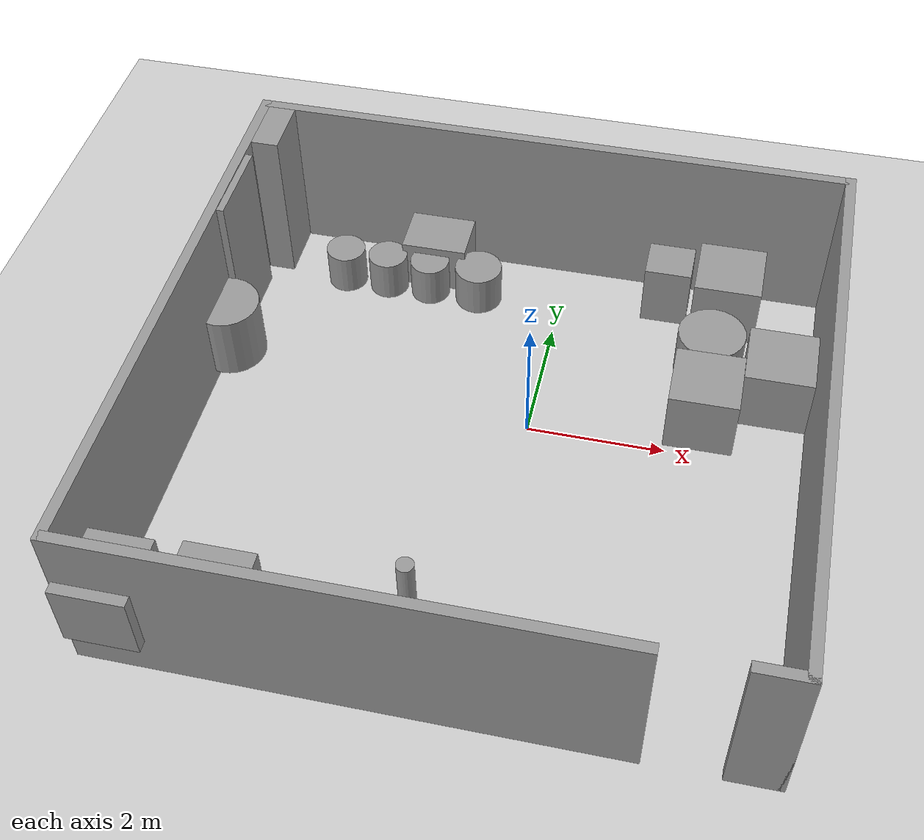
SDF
<sdf version="1.6">
 <world name="default">
  <light name="sun" type="directional">
   <pose>0 0 10 0 -0 0</pose>
   <diffuse>0.8 0.8 0.8 1</diffuse>
   <specular>0.2 0.2 0.2 1</specular>
   <attenuation>
    <range>1000</range>
    <constant>0.9</constant>
    <linear>0.01</linear>
    <quadratic>0.001</quadratic>
   </attenuation>
   <direction>-0.5 0.1 -0.9</direction>
  </light>
  <model name="ground_plane">
   <static>1</static>
   <link name="link">
    <collision name="collision">
     <geometry><plane><normal>0 0 1</normal><size>100 100</size></plane></geometry>
     <surface>
      <contact><collide_bitmask>65535</collide_bitmask></contact>
      <friction><ode><mu>100</mu><mu2>50</mu2></ode></friction>
     </surface>
    </collision>
    <visual name="visual">
     <cast_shadows>0</cast_shadows>
     <geometry><plane><normal>0 0 1</normal><size>100 100</size></plane></geometry>
     <material>
      <script><uri>file://media/materials/scripts/gazebo.material</uri><name>Gazebo/Grey</name></script>
     </material>
    </visual>
   </link>
  </model>
  <gravity>0 0 -9.8</gravity>
  <magnetic_field>6e-06 2.3e-05 -4.2e-05</magnetic_field>
  <atmosphere type="adiabatic"/>
  <physics name="default_physics" default="0" type="ode">
   <max_step_size>0.001</max_step_size>
   <real_time_factor>1</real_time_factor>
   <real_time_update_rate>1000</real_time_update_rate>
  </physics>
  <scene><ambient>0.4 0.4 0.4 1</ambient><background>0.7 0.7 0.7 1</background><shadows>1</shadows></scene>
  <audio><device>default</device></audio>
  <spherical_coordinates>
   <surface_model>EARTH_WGS84</surface_model>
   <latitude_deg>0</latitude_deg>
   <longitude_deg>0</longitude_deg>
   <elevation>0</elevation>
   <heading_deg>0</heading_deg>
  </spherical_coordinates>
  <model name="try2">
   <pose>-0.39709 -0.678514 0 0 -0 0</pose>
   <link name="Wall_13">
    <collision name="Wall_13_Collision">
     <geometry><box><size>8.5 0.15 2.5</size></box></geometry>
     <pose>0 0 1.25 0 -0 0</pose>
    </collision>
    <visual name="Wall_13_Visual">
     <pose>0 0 1.25 0 -0 0</pose>
     <geometry><box><size>8.5 0.15 2.5</size></box></geometry>
     <material>
      <script><uri>file://media/materials/scripts/gazebo.material</uri><name>Gazebo/Grey</name></script>
      <ambient>1 1 1 1</ambient>
     </material>
     <meta><layer>0</layer></meta>
    </visual>
    <pose>-4.425 -0 0 0 -0 -1.5708</pose>
   </link>
   <link name="Wall_14">
    <collision name="Wall_14_Collision">
     <geometry><box><size>7.25 0.15 2.5</size></box></geometry>
     <pose>0 0 1.25 0 -0 0</pose>
    </collision>
    <visual name="Wall_14_Visual">
     <pose>0 0 1.25 0 -0 0</pose>
     <geometry><box><size>7.25 0.15 2.5</size></box></geometry>
     <material>
      <script><uri>file://media/materials/scripts/gazebo.material</uri><name>Gazebo/Grey</name></script>
      <ambient>1 1 1 1</ambient>
     </material>
     <meta><layer>0</layer></meta>
    </visual>
    <pose>-0.875 -4.175 0 0 -0 0</pose>
   </link>
   <link name="Wall_7">
    <collision name="Wall_7_Collision">
     <geometry><box><size>9 0.15 2.5</size></box></geometry>
     <pose>0 0 1.25 0 -0 0</pose>
    </collision>
    <visual name="Wall_7_Visual">
     <pose>0 0 1.25 0 -0 0</pose>
     <geometry><box><size>9 0.15 2.5</size></box></geometry>
     <material>
      <script><uri>file://media/materials/scripts/gazebo.material</uri><name>Gazebo/Grey</name></script>
      <ambient>1 1 1 1</ambient>
     </material>
     <meta><layer>0</layer></meta>
    </visual>
    <pose>0 4.175 0 0 -0 0</pose>
   </link>
   <link name="Wall_8">
    <collision name="Wall_8_Collision">
     <geometry><box><size>8.5 0.15 2.5</size></box></geometry>
     <pose>0 0 1.25 0 -0 0</pose>
    </collision>
    <visual name="Wall_8_Visual">
     <pose>0 0 1.25 0 -0 0</pose>
     <geometry><box><size>8.5 0.15 2.5</size></box></geometry>
     <material>
      <script><uri>file://media/materials/scripts/gazebo.material</uri><name>Gazebo/Grey</name></script>
      <ambient>1 1 1 1</ambient>
     </material>
     <meta><layer>0</layer></meta>
    </visual>
    <pose>4.425 -0 0 0 -0 -1.5708</pose>
   </link>
   <link name="Wall_9">
    <collision name="Wall_9_Collision">
     <geometry><box><size>0.75 0.15 2.5</size></box></geometry>
     <pose>0 0 1.25 0 -0 0</pose>
    </collision>
    <visual name="Wall_9_Visual">
     <pose>0 0 1.25 0 -0 0</pose>
     <geometry><box><size>0.75 0.15 2.5</size></box></geometry>
     <material>
      <script><uri>file://media/materials/scripts/gazebo.material</uri><name>Gazebo/Grey</name></script>
      <ambient>1 1 1 1</ambient>
     </material>
     <meta><layer>0</layer></meta>
    </visual>
    <pose>4.125 -4.175 0 0 -0 3.14159</pose>
   </link>
   <static>1</static>
  </model>
  <model name="unit_cylinder">
   <pose>-4.6318 0.476302 0.683215 1e-06 1e-06 -0.0503</pose>
   <link name="link">
    <inertial>
     <mass>1</mass>
     <inertia><ixx>0.145833</ixx><ixy>0</ixy><ixz>0</ixz><iyy>0.145833</iyy><iyz>0</iyz><izz>0.125</izz></inertia>
    </inertial>
    <collision name="collision">
     <geometry><cylinder><radius>0.499999</radius><length>1</length></cylinder></geometry>
    </collision>
    <visual name="visual">
     <geometry><cylinder><radius>0.499999</radius><length>1</length></cylinder></geometry>
     <material>
      <script><name>Gazebo/Grey</name><uri>file://media/materials/scripts/gazebo.material</uri></script>
     </material>
    </visual>
   </link>
  </model>
  <model name="unit_cylinder_clone">
   <pose>-0.512084 -4.63591 1.36575 0 0 -0.050081</pose>
   <link name="link">
    <inertial>
     <mass>1</mass>
     <inertia><ixx>0.145833</ixx><ixy>0</ixy><ixz>0</ixz><iyy>0.145833</iyy><iyz>0</iyz><izz>0.125</izz></inertia>
    </inertial>
    <collision name="collision">
     <geometry><cylinder><radius>0.10637</radius><length>3.09796</length></cylinder></geometry>
    </collision>
    <visual name="visual">
     <geometry><cylinder><radius>0.10637</radius><length>3.09796</length></cylinder></geometry>
     <material>
      <script><name>Gazebo/Grey</name><uri>file://media/materials/scripts/gazebo.material</uri></script>
     </material>
    </visual>
   </link>
  </model>
  <model name="unit_box">
   <pose>-4.36159 -4.58482 1.15231 -0 -0 -0</pose>
   <link name="link">
    <inertial>
     <mass>1</mass>
     <inertia>
      <ixx>0.166667</ixx>
      <ixy>0</ixy>
      <ixz>0</ixz>
      <iyy>0.166667</iyy>
      <iyz>0</iyz>
      <izz>0.166667</izz>
     </inertia>
    </inertial>
    <collision name="collision"><geometry><box><size>1 0.999998 0.999997</size></box></geometry></collision>
    <visual name="visual">
     <geometry><box><size>1 0.999998 0.999997</size></box></geometry>
     <material>
      <script><name>Gazebo/Grey</name><uri>file://media/materials/scripts/gazebo.material</uri></script>
     </material>
    </visual>
   </link>
  </model>
  <model name="unit_box_0">
   <pose>-3.29242 -4.09603 0.5 0 0 -6e-06</pose>
   <link name="link">
    <inertial>
     <mass>1</mass>
     <inertia>
      <ixx>0.166667</ixx>
      <ixy>0</ixy>
      <ixz>0</ixz>
      <iyy>0.166667</iyy>
      <iyz>0</iyz>
      <izz>0.166667</izz>
     </inertia>
    </inertial>
    <collision name="collision"><geometry><box><size>1 0.999996 1</size></box></geometry></collision>
    <visual name="visual">
     <geometry><box><size>1 0.999996 1</size></box></geometry>
     <material>
      <script><name>Gazebo/Grey</name><uri>file://media/materials/scripts/gazebo.material</uri></script>
     </material>
    </visual>
   </link>
  </model>
  <model name="unit_box_1">
   <pose>2.54615 2.92035 0.5 0 -0 0.000397</pose>
   <link name="link">
    <inertial>
     <mass>1</mass>
     <inertia>
      <ixx>0.166667</ixx>
      <ixy>0</ixy>
      <ixz>0</ixz>
      <iyy>0.166667</iyy>
      <iyz>0</iyz>
      <izz>0.166667</izz>
     </inertia>
    </inertial>
    <collision name="collision"><geometry><box><size>0.999999 1 1</size></box></geometry></collision>
    <visual name="visual">
     <geometry><box><size>0.999999 1 1</size></box></geometry>
     <material>
      <script><name>Gazebo/Grey</name><uri>file://media/materials/scripts/gazebo.material</uri></script>
     </material>
    </visual>
   </link>
  </model>
  <model name="unit_box_3">
   <pose>3.45171 1.25348 0.499995 0 -9e-06 0.001146</pose>
   <link name="link">
    <inertial>
     <mass>1</mass>
     <inertia>
      <ixx>0.166667</ixx>
      <ixy>0</ixy>
      <ixz>0</ixz>
      <iyy>0.166667</iyy>
      <iyz>0</iyz>
      <izz>0.166667</izz>
     </inertia>
    </inertial>
    <collision name="collision"><geometry><box><size>1 0.999996 1</size></box></geometry></collision>
    <visual name="visual">
     <geometry><box><size>1 0.999996 1</size></box></geometry>
     <material>
      <script><name>Gazebo/Grey</name><uri>file://media/materials/scripts/gazebo.material</uri></script>
     </material>
    </visual>
   </link>
  </model>
  <model name="unit_box_4">
   <pose>2.45082 0.619019 0.500001 -2e-06 0 0.005246</pose>
   <link name="link">
    <inertial>
     <mass>1</mass>
     <inertia>
      <ixx>0.166667</ixx>
      <ixy>0</ixy>
      <ixz>0</ixz>
      <iyy>0.166667</iyy>
      <iyz>0</iyz>
      <izz>0.166667</izz>
     </inertia>
    </inertial>
    <collision name="collision"><geometry><box><size>1 0.999997 1</size></box></geometry></collision>
    <visual name="visual">
     <geometry><box><size>1 0.999997 1</size></box></geometry>
     <material>
      <script><name>Gazebo/Grey</name><uri>file://media/materials/scripts/gazebo.material</uri></script>
     </material>
    </visual>
   </link>
  </model>
  <model name="unit_box_1_clone">
   <pose>1.62629 2.93056 0.5 0 -0 0.000397</pose>
   <link name="link">
    <inertial>
     <mass>1</mass>
     <inertia>
      <ixx>0.166667</ixx>
      <ixy>0</ixy>
      <ixz>0</ixz>
      <iyy>0.166667</iyy>
      <iyz>0</iyz>
      <izz>0.166667</izz>
     </inertia>
    </inertial>
    <collision name="collision"><geometry><box><size>0.698919 0.638929 1</size></box></geometry></collision>
    <visual name="visual">
     <geometry><box><size>0.698919 0.638929 1</size></box></geometry>
     <material>
      <script><name>Gazebo/Grey</name><uri>file://media/materials/scripts/gazebo.material</uri></script>
     </material>
    </visual>
   </link>
  </model>
  <model name="unit_box_5">
   <pose>-2.03747 3.14754 0.279828 -0 0.000267 0.003053</pose>
   <link name="link">
    <inertial>
     <mass>1</mass>
     <inertia>
      <ixx>0.166667</ixx>
      <ixy>0</ixy>
      <ixz>0</ixz>
      <iyy>0.166667</iyy>
      <iyz>0</iyz>
      <izz>0.166667</izz>
     </inertia>
    </inertial>
    <collision name="collision"><geometry><box><size>1 1 0.999999</size></box></geometry></collision>
    <visual name="visual">
     <geometry><box><size>1 1 0.999999</size></box></geometry>
     <material>
      <script><name>Gazebo/Grey</name><uri>file://media/materials/scripts/gazebo.material</uri></script>
     </material>
    </visual>
   </link>
  </model>
  <model name="unit_cylinder_0">
   <pose>2.41652 1.69135 0.325531 2e-06 2e-06 0</pose>
   <link name="link">
    <inertial>
     <mass>1</mass>
     <inertia><ixx>0.145833</ixx><ixy>0</ixy><ixz>0</ixz><iyy>0.145833</iyy><iyz>0</iyz><izz>0.125</izz></inertia>
    </inertial>
    <collision name="collision">
     <geometry><cylinder><radius>0.5</radius><length>1</length></cylinder></geometry>
    </collision>
    <visual name="visual">
     <geometry><cylinder><radius>0.5</radius><length>1</length></cylinder></geometry>
     <material>
      <script><name>Gazebo/Grey</name><uri>file://media/materials/scripts/gazebo.material</uri></script>
     </material>
    </visual>
   </link>
  </model>
  <model name="unit_cylinder_0_clone">
   <pose>-1.29136 2.53482 0.325533 0 -0 0</pose>
   <link name="link">
    <inertial>
     <mass>1</mass>
     <inertia><ixx>0.145833</ixx><ixy>0</ixy><ixz>0</ixz><iyy>0.145833</iyy><iyz>0</iyz><izz>0.125</izz></inertia>
    </inertial>
    <collision name="collision">
     <geometry><cylinder><radius>0.361323</radius><length>0.651067</length></cylinder></geometry>
    </collision>
    <visual name="visual">
     <geometry><cylinder><radius>0.361323</radius><length>0.651067</length></cylinder></geometry>
     <material>
      <script><name>Gazebo/Grey</name><uri>file://media/materials/scripts/gazebo.material</uri></script>
     </material>
    </visual>
   </link>
  </model>
  <model name="unit_cylinder_0_clone_clone">
   <pose>-2.06578 2.51933 0.325524 0 -0 0</pose>
   <link name="link">
    <inertial>
     <mass>1</mass>
     <inertia><ixx>0.145833</ixx><ixy>0</ixy><ixz>0</ixz><iyy>0.145833</iyy><iyz>0</iyz><izz>0.125</izz></inertia>
    </inertial>
    <collision name="collision">
     <geometry><cylinder><radius>0.301077</radius><length>0.651067</length></cylinder></geometry>
    </collision>
    <visual name="visual">
     <geometry><cylinder><radius>0.301077</radius><length>0.651067</length></cylinder></geometry>
     <material>
      <script><name>Gazebo/Grey</name><uri>file://media/materials/scripts/gazebo.material</uri></script>
     </material>
    </visual>
   </link>
  </model>
  <model name="unit_cylinder_0_clone_clone_0">
   <pose>-2.73971 2.51856 0.325533 0 -0 0</pose>
   <link name="link">
    <inertial>
     <mass>1</mass>
     <inertia><ixx>0.145833</ixx><ixy>0</ixy><ixz>0</ixz><iyy>0.145833</iyy><iyz>0</iyz><izz>0.125</izz></inertia>
    </inertial>
    <collision name="collision">
     <geometry><cylinder><radius>0.301077</radius><length>0.651067</length></cylinder></geometry>
    </collision>
    <visual name="visual">
     <geometry><cylinder><radius>0.301077</radius><length>0.651067</length></cylinder></geometry>
     <material>
      <script><name>Gazebo/Grey</name><uri>file://media/materials/scripts/gazebo.material</uri></script>
     </material>
    </visual>
   </link>
  </model>
  <model name="unit_cylinder_0_clone_clone_1">
   <pose>-3.42024 2.52353 0.32553 0 -0 0.003021</pose>
   <link name="link">
    <inertial>
     <mass>1</mass>
     <inertia><ixx>0.145833</ixx><ixy>0</ixy><ixz>0</ixz><iyy>0.145833</iyy><iyz>0</iyz><izz>0.125</izz></inertia>
    </inertial>
    <collision name="collision">
     <geometry><cylinder><radius>0.301077</radius><length>0.651067</length></cylinder></geometry>
    </collision>
    <visual name="visual">
     <geometry><cylinder><radius>0.301077</radius><length>0.651067</length></cylinder></geometry>
     <material>
      <script><name>Gazebo/Grey</name><uri>file://media/materials/scripts/gazebo.material</uri></script>
     </material>
    </visual>
   </link>
  </model>
  <model name="unit_box_6">
   <pose>-4.68719 1.61482 1.24634 2e-06 -0 -0.004922</pose>
   <link name="link">
    <inertial>
     <mass>1</mass>
     <inertia>
      <ixx>0.166667</ixx>
      <ixy>0</ixy>
      <ixz>0</ixz>
      <iyy>0.166667</iyy>
      <iyz>0</iyz>
      <izz>0.166667</izz>
     </inertia>
    </inertial>
    <collision name="collision"><geometry><box><size>0.106554 1.27519 2.49268</size></box></geometry></collision>
    <visual name="visual">
     <geometry><box><size>0.106554 1.27519 2.49268</size></box></geometry>
     <material>
      <script><name>Gazebo/Grey</name><uri>file://media/materials/scripts/gazebo.material</uri></script>
     </material>
    </visual>
   </link>
  </model>
  <model name="unit_box_2">
   <pose>-4.54308 2.97858 1.25065 1e-06 -0 0.000415</pose>
   <link name="link">
    <inertial>
     <mass>1</mass>
     <inertia>
      <ixx>0.166667</ixx>
      <ixy>0</ixy>
      <ixz>0</ixz>
      <iyy>0.166667</iyy>
      <iyz>0</iyz>
      <izz>0.166667</izz>
     </inertia>
    </inertial>
    <collision name="collision"><geometry><box><size>0.407495 0.885568 2.50128</size></box></geometry></collision>
    <visual name="visual">
     <geometry><box><size>0.407495 0.885568 2.50128</size></box></geometry>
     <material>
      <script><name>Gazebo/Grey</name><uri>file://media/materials/scripts/gazebo.material</uri></script>
     </material>
    </visual>
   </link>
  </model>
 </world>
</sdf>
